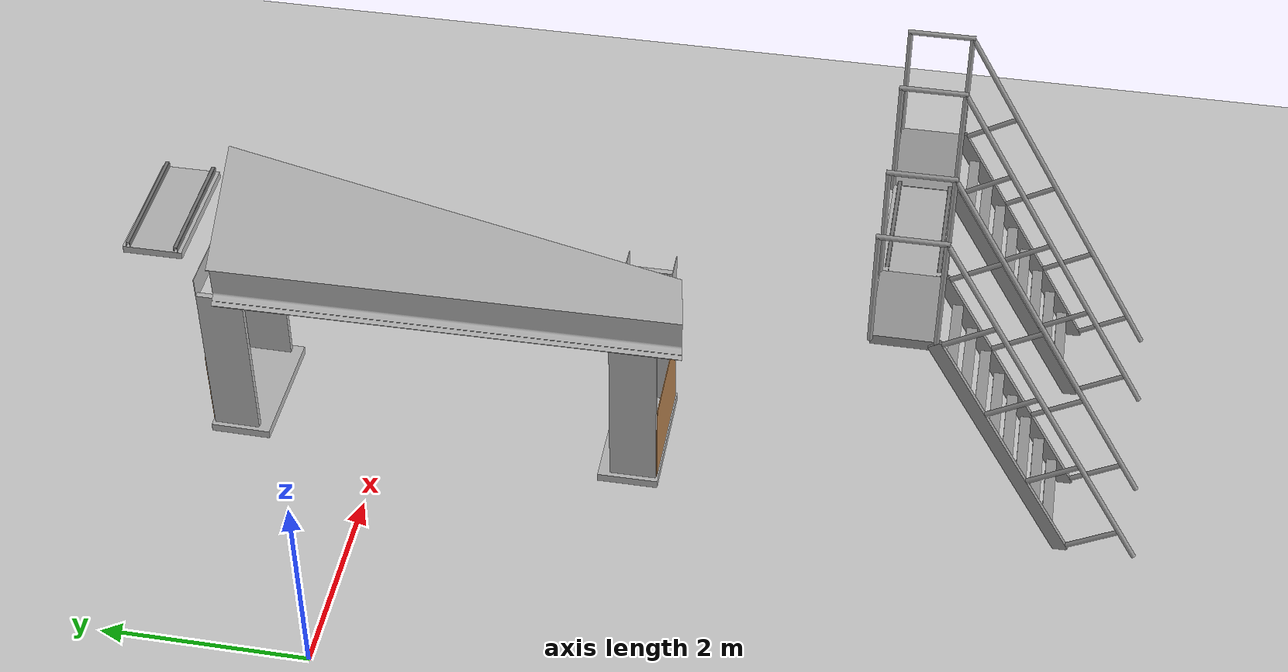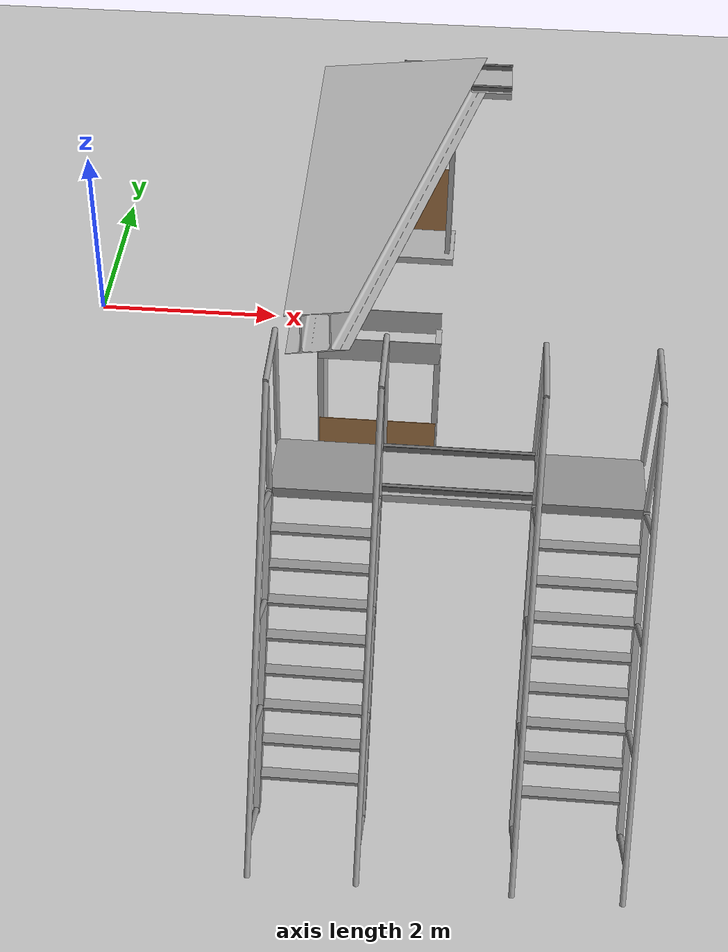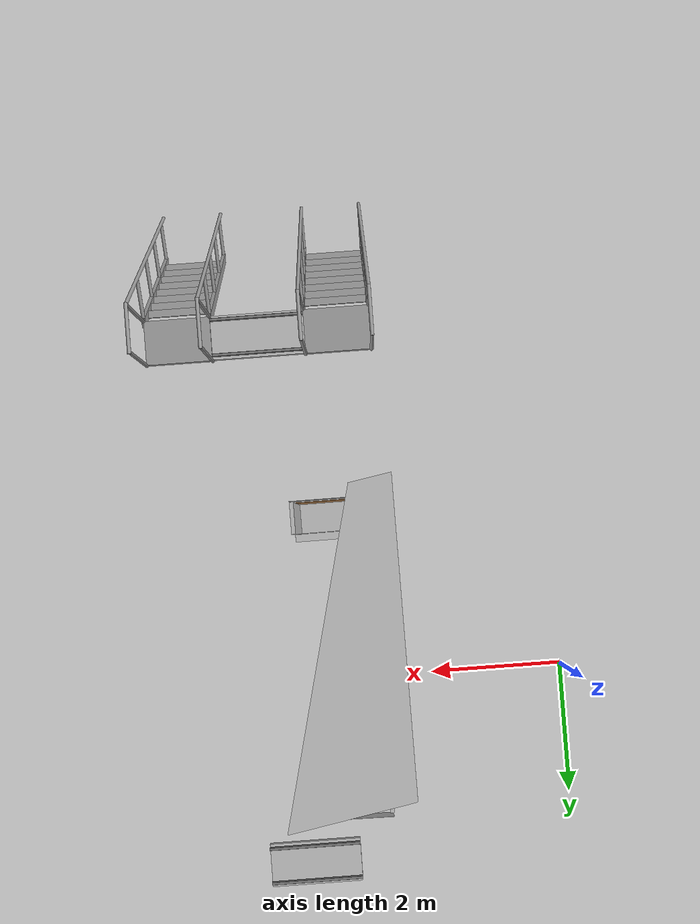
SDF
<sdf version="1.6">
 <world name="default">
  <model name="ground_plane">
   <static>1</static>
   <link name="link">
    <collision name="collision">
     <geometry><plane><normal>0 0 1</normal><size>100 100</size></plane></geometry>
     <surface>
      <contact><collide_bitmask>65535</collide_bitmask></contact>
      <friction><ode><mu>100</mu><mu2>50</mu2></ode></friction>
     </surface>
    </collision>
    <visual name="visual">
     <cast_shadows>0</cast_shadows>
     <geometry><plane><normal>0 0 1</normal><size>100 100</size></plane></geometry>
     <material>
      <script><uri>file://media/materials/scripts/gazebo.material</uri><name>Gazebo/Grey</name></script>
     </material>
    </visual>
   </link>
  </model>
  <model name="ladder_60deg_2rails">
   <static>1</static>
   <link name="step0">
    <pose>0 0.15396 0.266667 0 -0 0</pose>
    <inertial>
     <mass>9.75482</mass>
     <inertia>
      <ixx>0.00957124</ixx>
      <iyy>0.65963</iyy>
      <izz>0.666842</izz>
      <ixy>0</ixy>
      <ixz>0</ixz>
      <iyz>0</iyz>
     </inertia>
    </inertial>
    <collision name="collision"><geometry><box><size>0.9 0.1016 0.0381</size></box></geometry></collision>
    <visual name="visual">
     <geometry><box><size>0.9 0.1016 0.0381</size></box></geometry>
     <material>
      <script><uri>file://media/materials/scripts/gazebo.material</uri><name>Gazebo/Grey</name></script>
     </material>
    </visual>
   </link>
   <link name="step1">
    <pose>0 0.30792 0.533333 0 -0 0</pose>
    <inertial>
     <mass>9.75482</mass>
     <inertia>
      <ixx>0.00957124</ixx>
      <iyy>0.65963</iyy>
      <izz>0.666842</izz>
      <ixy>0</ixy>
      <ixz>0</ixz>
      <iyz>0</iyz>
     </inertia>
    </inertial>
    <collision name="collision"><geometry><box><size>0.9 0.1016 0.0381</size></box></geometry></collision>
    <visual name="visual">
     <geometry><box><size>0.9 0.1016 0.0381</size></box></geometry>
     <material>
      <script><uri>file://media/materials/scripts/gazebo.material</uri><name>Gazebo/Grey</name></script>
     </material>
    </visual>
   </link>
   <link name="step2">
    <pose>0 0.46188 0.8 0 -0 0</pose>
    <inertial>
     <mass>9.75482</mass>
     <inertia>
      <ixx>0.00957124</ixx>
      <iyy>0.65963</iyy>
      <izz>0.666842</izz>
      <ixy>0</ixy>
      <ixz>0</ixz>
      <iyz>0</iyz>
     </inertia>
    </inertial>
    <collision name="collision"><geometry><box><size>0.9 0.1016 0.0381</size></box></geometry></collision>
    <visual name="visual">
     <geometry><box><size>0.9 0.1016 0.0381</size></box></geometry>
     <material>
      <script><uri>file://media/materials/scripts/gazebo.material</uri><name>Gazebo/Grey</name></script>
     </material>
    </visual>
   </link>
   <link name="step3">
    <pose>0 0.61584 1.06667 0 -0 0</pose>
    <inertial>
     <mass>9.75482</mass>
     <inertia>
      <ixx>0.00957124</ixx>
      <iyy>0.65963</iyy>
      <izz>0.666842</izz>
      <ixy>0</ixy>
      <ixz>0</ixz>
      <iyz>0</iyz>
     </inertia>
    </inertial>
    <collision name="collision"><geometry><box><size>0.9 0.1016 0.0381</size></box></geometry></collision>
    <visual name="visual">
     <geometry><box><size>0.9 0.1016 0.0381</size></box></geometry>
     <material>
      <script><uri>file://media/materials/scripts/gazebo.material</uri><name>Gazebo/Grey</name></script>
     </material>
    </visual>
   </link>
   <link name="step4">
    <pose>0 0.7698 1.33333 0 -0 0</pose>
    <inertial>
     <mass>9.75482</mass>
     <inertia>
      <ixx>0.00957124</ixx>
      <iyy>0.65963</iyy>
      <izz>0.666842</izz>
      <ixy>0</ixy>
      <ixz>0</ixz>
      <iyz>0</iyz>
     </inertia>
    </inertial>
    <collision name="collision"><geometry><box><size>0.9 0.1016 0.0381</size></box></geometry></collision>
    <visual name="visual">
     <geometry><box><size>0.9 0.1016 0.0381</size></box></geometry>
     <material>
      <script><uri>file://media/materials/scripts/gazebo.material</uri><name>Gazebo/Grey</name></script>
     </material>
    </visual>
   </link>
   <link name="step5">
    <pose>0 0.92376 1.6 0 -0 0</pose>
    <inertial>
     <mass>9.75482</mass>
     <inertia>
      <ixx>0.00957124</ixx>
      <iyy>0.65963</iyy>
      <izz>0.666842</izz>
      <ixy>0</ixy>
      <ixz>0</ixz>
      <iyz>0</iyz>
     </inertia>
    </inertial>
    <collision name="collision"><geometry><box><size>0.9 0.1016 0.0381</size></box></geometry></collision>
    <visual name="visual">
     <geometry><box><size>0.9 0.1016 0.0381</size></box></geometry>
     <material>
      <script><uri>file://media/materials/scripts/gazebo.material</uri><name>Gazebo/Grey</name></script>
     </material>
    </visual>
   </link>
   <link name="step6">
    <pose>0 1.07772 1.86667 0 -0 0</pose>
    <inertial>
     <mass>9.75482</mass>
     <inertia>
      <ixx>0.00957124</ixx>
      <iyy>0.65963</iyy>
      <izz>0.666842</izz>
      <ixy>0</ixy>
      <ixz>0</ixz>
      <iyz>0</iyz>
     </inertia>
    </inertial>
    <collision name="collision"><geometry><box><size>0.9 0.1016 0.0381</size></box></geometry></collision>
    <visual name="visual">
     <geometry><box><size>0.9 0.1016 0.0381</size></box></geometry>
     <material>
      <script><uri>file://media/materials/scripts/gazebo.material</uri><name>Gazebo/Grey</name></script>
     </material>
    </visual>
   </link>
   <link name="step7">
    <pose>0 1.23168 2.13333 0 -0 0</pose>
    <inertial>
     <mass>9.75482</mass>
     <inertia>
      <ixx>0.00957124</ixx>
      <iyy>0.65963</iyy>
      <izz>0.666842</izz>
      <ixy>0</ixy>
      <ixz>0</ixz>
      <iyz>0</iyz>
     </inertia>
    </inertial>
    <collision name="collision"><geometry><box><size>0.9 0.1016 0.0381</size></box></geometry></collision>
    <visual name="visual">
     <geometry><box><size>0.9 0.1016 0.0381</size></box></geometry>
     <material>
      <script><uri>file://media/materials/scripts/gazebo.material</uri><name>Gazebo/Grey</name></script>
     </material>
    </visual>
   </link>
   <link name="landing">
    <pose>0 1.68564 2.4 0 -0 0</pose>
    <inertial>
     <mass>57.6072</mass>
     <inertia><ixx>1.73518</ixx><iyy>3.89545</iyy><izz>5.6167</izz><ixy>0</ixy><ixz>0</ixz><iyz>0</iyz></inertia>
    </inertial>
    <collision name="collision"><geometry><box><size>0.9 0.6 0.1016</size></box></geometry></collision>
    <visual name="visual">
     <geometry><box><size>0.9 0.6 0.1016</size></box></geometry>
     <material>
      <script><uri>file://media/materials/scripts/gazebo.material</uri><name>Gazebo/Grey</name></script>
     </material>
    </visual>
   </link>
   <link name="left_side_wall">
    <pose>-0.45 0.69282 1.2 1.0472 -0 0</pose>
    <collision name="collision"><geometry><box><size>0.0508 2.85128 0.13</size></box></geometry></collision>
    <visual name="visual">
     <geometry><box><size>0.0508 2.85128 0.13</size></box></geometry>
     <material>
      <script><uri>file://media/materials/scripts/gazebo.material</uri><name>Gazebo/Grey</name></script>
     </material>
    </visual>
   </link>
   <link name="right_side_wall">
    <pose>0.45 0.69282 1.2 1.0472 -0 0</pose>
    <collision name="collision"><geometry><box><size>0.0508 2.85128 0.13</size></box></geometry></collision>
    <visual name="visual">
     <geometry><box><size>0.0508 2.85128 0.13</size></box></geometry>
     <material>
      <script><uri>file://media/materials/scripts/gazebo.material</uri><name>Gazebo/Grey</name></script>
     </material>
    </visual>
   </link>
   <link name="left_railing_long">
    <pose>-0.45 0.34282 1.80622 -0.523599 0 0</pose>
    <collision name="collision">
     <geometry><cylinder><radius>0.02413</radius><length>4.17128</length></cylinder></geometry>
    </collision>
    <visual name="visual">
     <geometry><cylinder><radius>0.02413</radius><length>4.17128</length></cylinder></geometry>
     <material>
      <script><uri>file://media/materials/scripts/gazebo.material</uri><name>Gazebo/Grey</name></script>
     </material>
    </visual>
   </link>
   <link name="left_railing_upright0">
    <pose>-0.45 -0.274963 0.15875 1.0472 -0 0</pose>
    <collision name="collision">
     <geometry><cylinder><radius>0.02413</radius><length>0.541218</length></cylinder></geometry>
    </collision>
    <visual name="visual">
     <geometry><cylinder><radius>0.02413</radius><length>0.541218</length></cylinder></geometry>
     <material>
      <script><uri>file://media/materials/scripts/gazebo.material</uri><name>Gazebo/Grey</name></script>
     </material>
    </visual>
   </link>
   <link name="left_railing_upright1">
    <pose>-0.45 0.186917 0.95875 1.0472 -0 0</pose>
    <collision name="collision">
     <geometry><cylinder><radius>0.02413</radius><length>0.541218</length></cylinder></geometry>
    </collision>
    <visual name="visual">
     <geometry><cylinder><radius>0.02413</radius><length>0.541218</length></cylinder></geometry>
     <material>
      <script><uri>file://media/materials/scripts/gazebo.material</uri><name>Gazebo/Grey</name></script>
     </material>
    </visual>
   </link>
   <link name="left_railing_upright2">
    <pose>-0.45 0.648797 1.75875 1.0472 -0 0</pose>
    <collision name="collision">
     <geometry><cylinder><radius>0.02413</radius><length>0.541218</length></cylinder></geometry>
    </collision>
    <visual name="visual">
     <geometry><cylinder><radius>0.02413</radius><length>0.541218</length></cylinder></geometry>
     <material>
      <script><uri>file://media/materials/scripts/gazebo.material</uri><name>Gazebo/Grey</name></script>
     </material>
    </visual>
   </link>
   <link name="left_railing_upright3">
    <pose>-0.45 1.11068 2.55875 1.0472 -0 0</pose>
    <collision name="collision">
     <geometry><cylinder><radius>0.02413</radius><length>0.541218</length></cylinder></geometry>
    </collision>
    <visual name="visual">
     <geometry><cylinder><radius>0.02413</radius><length>0.541218</length></cylinder></geometry>
     <material>
      <script><uri>file://media/materials/scripts/gazebo.material</uri><name>Gazebo/Grey</name></script>
     </material>
    </visual>
   </link>
   <link name="left_railing_landing_top">
    <pose>-0.45 1.68564 3.61244 1.5708 -0 0</pose>
    <collision name="collision">
     <geometry><cylinder><radius>0.02413</radius><length>0.64826</length></cylinder></geometry>
    </collision>
    <visual name="visual">
     <geometry><cylinder><radius>0.02413</radius><length>0.64826</length></cylinder></geometry>
     <material>
      <script><uri>file://media/materials/scripts/gazebo.material</uri><name>Gazebo/Grey</name></script>
     </material>
    </visual>
   </link>
   <link name="left_railing_landing_upright_0">
    <pose>-0.45 1.38564 3.00622 0 -0 0</pose>
    <collision name="collision">
     <geometry><cylinder><radius>0.02413</radius><length>1.21244</length></cylinder></geometry>
    </collision>
    <visual name="visual">
     <geometry><cylinder><radius>0.02413</radius><length>1.21244</length></cylinder></geometry>
     <material>
      <script><uri>file://media/materials/scripts/gazebo.material</uri><name>Gazebo/Grey</name></script>
     </material>
    </visual>
   </link>
   <link name="left_railing_landing_upright_1">
    <pose>-0.45 1.98564 3.00622 0 -0 0</pose>
    <collision name="collision">
     <geometry><cylinder><radius>0.02413</radius><length>1.21244</length></cylinder></geometry>
    </collision>
    <visual name="visual">
     <geometry><cylinder><radius>0.02413</radius><length>1.21244</length></cylinder></geometry>
     <material>
      <script><uri>file://media/materials/scripts/gazebo.material</uri><name>Gazebo/Grey</name></script>
     </material>
    </visual>
   </link>
   <link name="right_railing_long">
    <pose>0.45 0.34282 1.80622 -0.523599 0 0</pose>
    <collision name="collision">
     <geometry><cylinder><radius>0.02413</radius><length>4.17128</length></cylinder></geometry>
    </collision>
    <visual name="visual">
     <geometry><cylinder><radius>0.02413</radius><length>4.17128</length></cylinder></geometry>
     <material>
      <script><uri>file://media/materials/scripts/gazebo.material</uri><name>Gazebo/Grey</name></script>
     </material>
    </visual>
   </link>
   <link name="right_railing_upright0">
    <pose>0.45 -0.274963 0.15875 1.0472 -0 0</pose>
    <collision name="collision">
     <geometry><cylinder><radius>0.02413</radius><length>0.541218</length></cylinder></geometry>
    </collision>
    <visual name="visual">
     <geometry><cylinder><radius>0.02413</radius><length>0.541218</length></cylinder></geometry>
     <material>
      <script><uri>file://media/materials/scripts/gazebo.material</uri><name>Gazebo/Grey</name></script>
     </material>
    </visual>
   </link>
   <link name="right_railing_upright1">
    <pose>0.45 0.186917 0.95875 1.0472 -0 0</pose>
    <collision name="collision">
     <geometry><cylinder><radius>0.02413</radius><length>0.541218</length></cylinder></geometry>
    </collision>
    <visual name="visual">
     <geometry><cylinder><radius>0.02413</radius><length>0.541218</length></cylinder></geometry>
     <material>
      <script><uri>file://media/materials/scripts/gazebo.material</uri><name>Gazebo/Grey</name></script>
     </material>
    </visual>
   </link>
   <link name="right_railing_upright2">
    <pose>0.45 0.648797 1.75875 1.0472 -0 0</pose>
    <collision name="collision">
     <geometry><cylinder><radius>0.02413</radius><length>0.541218</length></cylinder></geometry>
    </collision>
    <visual name="visual">
     <geometry><cylinder><radius>0.02413</radius><length>0.541218</length></cylinder></geometry>
     <material>
      <script><uri>file://media/materials/scripts/gazebo.material</uri><name>Gazebo/Grey</name></script>
     </material>
    </visual>
   </link>
   <link name="right_railing_upright3">
    <pose>0.45 1.11068 2.55875 1.0472 -0 0</pose>
    <collision name="collision">
     <geometry><cylinder><radius>0.02413</radius><length>0.541218</length></cylinder></geometry>
    </collision>
    <visual name="visual">
     <geometry><cylinder><radius>0.02413</radius><length>0.541218</length></cylinder></geometry>
     <material>
      <script><uri>file://media/materials/scripts/gazebo.material</uri><name>Gazebo/Grey</name></script>
     </material>
    </visual>
   </link>
   <link name="right_railing_landing_top">
    <pose>0.45 1.68564 3.61244 1.5708 -0 0</pose>
    <collision name="collision">
     <geometry><cylinder><radius>0.02413</radius><length>0.64826</length></cylinder></geometry>
    </collision>
    <visual name="visual">
     <geometry><cylinder><radius>0.02413</radius><length>0.64826</length></cylinder></geometry>
     <material>
      <script><uri>file://media/materials/scripts/gazebo.material</uri><name>Gazebo/Grey</name></script>
     </material>
    </visual>
   </link>
   <link name="right_railing_landing_upright_0">
    <pose>0.45 1.38564 3.00622 0 -0 0</pose>
    <collision name="collision">
     <geometry><cylinder><radius>0.02413</radius><length>1.21244</length></cylinder></geometry>
    </collision>
    <visual name="visual">
     <geometry><cylinder><radius>0.02413</radius><length>1.21244</length></cylinder></geometry>
     <material>
      <script><uri>file://media/materials/scripts/gazebo.material</uri><name>Gazebo/Grey</name></script>
     </material>
    </visual>
   </link>
   <link name="right_railing_landing_upright_1">
    <pose>0.45 1.98564 3.00622 0 -0 0</pose>
    <collision name="collision">
     <geometry><cylinder><radius>0.02413</radius><length>1.21244</length></cylinder></geometry>
    </collision>
    <visual name="visual">
     <geometry><cylinder><radius>0.02413</radius><length>1.21244</length></cylinder></geometry>
     <material>
      <script><uri>file://media/materials/scripts/gazebo.material</uri><name>Gazebo/Grey</name></script>
     </material>
    </visual>
   </link>
   <pose>5.22759 -6.71904 0 0 -0 0</pose>
  </model>
  <model name="ladder_60deg_2rails_clone_clone_clone">
   <static>1</static>
   <link name="step0">
    <pose>0 0.15396 0.266667 0 -0 0</pose>
    <inertial>
     <mass>9.75482</mass>
     <inertia>
      <ixx>0.00957124</ixx>
      <iyy>0.65963</iyy>
      <izz>0.666842</izz>
      <ixy>0</ixy>
      <ixz>0</ixz>
      <iyz>0</iyz>
     </inertia>
    </inertial>
    <collision name="collision"><geometry><box><size>0.9 0.1016 0.0381</size></box></geometry></collision>
    <visual name="visual">
     <geometry><box><size>0.9 0.1016 0.0381</size></box></geometry>
     <material>
      <script><uri>file://media/materials/scripts/gazebo.material</uri><name>Gazebo/Grey</name></script>
     </material>
    </visual>
   </link>
   <link name="step1">
    <pose>0 0.30792 0.533333 0 -0 0</pose>
    <inertial>
     <mass>9.75482</mass>
     <inertia>
      <ixx>0.00957124</ixx>
      <iyy>0.65963</iyy>
      <izz>0.666842</izz>
      <ixy>0</ixy>
      <ixz>0</ixz>
      <iyz>0</iyz>
     </inertia>
    </inertial>
    <collision name="collision"><geometry><box><size>0.9 0.1016 0.0381</size></box></geometry></collision>
    <visual name="visual">
     <geometry><box><size>0.9 0.1016 0.0381</size></box></geometry>
     <material>
      <script><uri>file://media/materials/scripts/gazebo.material</uri><name>Gazebo/Grey</name></script>
     </material>
    </visual>
   </link>
   <link name="step2">
    <pose>0 0.46188 0.8 0 -0 0</pose>
    <inertial>
     <mass>9.75482</mass>
     <inertia>
      <ixx>0.00957124</ixx>
      <iyy>0.65963</iyy>
      <izz>0.666842</izz>
      <ixy>0</ixy>
      <ixz>0</ixz>
      <iyz>0</iyz>
     </inertia>
    </inertial>
    <collision name="collision"><geometry><box><size>0.9 0.1016 0.0381</size></box></geometry></collision>
    <visual name="visual">
     <geometry><box><size>0.9 0.1016 0.0381</size></box></geometry>
     <material>
      <script><uri>file://media/materials/scripts/gazebo.material</uri><name>Gazebo/Grey</name></script>
     </material>
    </visual>
   </link>
   <link name="step3">
    <pose>0 0.61584 1.06667 0 -0 0</pose>
    <inertial>
     <mass>9.75482</mass>
     <inertia>
      <ixx>0.00957124</ixx>
      <iyy>0.65963</iyy>
      <izz>0.666842</izz>
      <ixy>0</ixy>
      <ixz>0</ixz>
      <iyz>0</iyz>
     </inertia>
    </inertial>
    <collision name="collision"><geometry><box><size>0.9 0.1016 0.0381</size></box></geometry></collision>
    <visual name="visual">
     <geometry><box><size>0.9 0.1016 0.0381</size></box></geometry>
     <material>
      <script><uri>file://media/materials/scripts/gazebo.material</uri><name>Gazebo/Grey</name></script>
     </material>
    </visual>
   </link>
   <link name="step4">
    <pose>0 0.7698 1.33333 0 -0 0</pose>
    <inertial>
     <mass>9.75482</mass>
     <inertia>
      <ixx>0.00957124</ixx>
      <iyy>0.65963</iyy>
      <izz>0.666842</izz>
      <ixy>0</ixy>
      <ixz>0</ixz>
      <iyz>0</iyz>
     </inertia>
    </inertial>
    <collision name="collision"><geometry><box><size>0.9 0.1016 0.0381</size></box></geometry></collision>
    <visual name="visual">
     <geometry><box><size>0.9 0.1016 0.0381</size></box></geometry>
     <material>
      <script><uri>file://media/materials/scripts/gazebo.material</uri><name>Gazebo/Grey</name></script>
     </material>
    </visual>
   </link>
   <link name="step5">
    <pose>0 0.92376 1.6 0 -0 0</pose>
    <inertial>
     <mass>9.75482</mass>
     <inertia>
      <ixx>0.00957124</ixx>
      <iyy>0.65963</iyy>
      <izz>0.666842</izz>
      <ixy>0</ixy>
      <ixz>0</ixz>
      <iyz>0</iyz>
     </inertia>
    </inertial>
    <collision name="collision"><geometry><box><size>0.9 0.1016 0.0381</size></box></geometry></collision>
    <visual name="visual">
     <geometry><box><size>0.9 0.1016 0.0381</size></box></geometry>
     <material>
      <script><uri>file://media/materials/scripts/gazebo.material</uri><name>Gazebo/Grey</name></script>
     </material>
    </visual>
   </link>
   <link name="step6">
    <pose>0 1.07772 1.86667 0 -0 0</pose>
    <inertial>
     <mass>9.75482</mass>
     <inertia>
      <ixx>0.00957124</ixx>
      <iyy>0.65963</iyy>
      <izz>0.666842</izz>
      <ixy>0</ixy>
      <ixz>0</ixz>
      <iyz>0</iyz>
     </inertia>
    </inertial>
    <collision name="collision"><geometry><box><size>0.9 0.1016 0.0381</size></box></geometry></collision>
    <visual name="visual">
     <geometry><box><size>0.9 0.1016 0.0381</size></box></geometry>
     <material>
      <script><uri>file://media/materials/scripts/gazebo.material</uri><name>Gazebo/Grey</name></script>
     </material>
    </visual>
   </link>
   <link name="step7">
    <pose>0 1.23168 2.13333 0 -0 0</pose>
    <inertial>
     <mass>9.75482</mass>
     <inertia>
      <ixx>0.00957124</ixx>
      <iyy>0.65963</iyy>
      <izz>0.666842</izz>
      <ixy>0</ixy>
      <ixz>0</ixz>
      <iyz>0</iyz>
     </inertia>
    </inertial>
    <collision name="collision"><geometry><box><size>0.9 0.1016 0.0381</size></box></geometry></collision>
    <visual name="visual">
     <geometry><box><size>0.9 0.1016 0.0381</size></box></geometry>
     <material>
      <script><uri>file://media/materials/scripts/gazebo.material</uri><name>Gazebo/Grey</name></script>
     </material>
    </visual>
   </link>
   <link name="landing">
    <pose>0 1.68564 2.4 0 -0 0</pose>
    <inertial>
     <mass>57.6072</mass>
     <inertia><ixx>1.73518</ixx><iyy>3.89545</iyy><izz>5.6167</izz><ixy>0</ixy><ixz>0</ixz><iyz>0</iyz></inertia>
    </inertial>
    <collision name="collision"><geometry><box><size>0.9 0.6 0.1016</size></box></geometry></collision>
    <visual name="visual">
     <geometry><box><size>0.9 0.6 0.1016</size></box></geometry>
     <material>
      <script><uri>file://media/materials/scripts/gazebo.material</uri><name>Gazebo/Grey</name></script>
     </material>
    </visual>
   </link>
   <link name="left_side_wall">
    <pose>-0.45 0.69282 1.2 1.0472 -0 0</pose>
    <collision name="collision"><geometry><box><size>0.0508 2.85128 0.13</size></box></geometry></collision>
    <visual name="visual">
     <geometry><box><size>0.0508 2.85128 0.13</size></box></geometry>
     <material>
      <script><uri>file://media/materials/scripts/gazebo.material</uri><name>Gazebo/Grey</name></script>
     </material>
    </visual>
   </link>
   <link name="right_side_wall">
    <pose>0.45 0.69282 1.2 1.0472 -0 0</pose>
    <collision name="collision"><geometry><box><size>0.0508 2.85128 0.13</size></box></geometry></collision>
    <visual name="visual">
     <geometry><box><size>0.0508 2.85128 0.13</size></box></geometry>
     <material>
      <script><uri>file://media/materials/scripts/gazebo.material</uri><name>Gazebo/Grey</name></script>
     </material>
    </visual>
   </link>
   <link name="left_railing_long">
    <pose>-0.45 0.34282 1.80622 -0.523599 0 0</pose>
    <collision name="collision">
     <geometry><cylinder><radius>0.02413</radius><length>4.17128</length></cylinder></geometry>
    </collision>
    <visual name="visual">
     <geometry><cylinder><radius>0.02413</radius><length>4.17128</length></cylinder></geometry>
     <material>
      <script><uri>file://media/materials/scripts/gazebo.material</uri><name>Gazebo/Grey</name></script>
     </material>
    </visual>
   </link>
   <link name="left_railing_upright0">
    <pose>-0.45 -0.274963 0.15875 1.0472 -0 0</pose>
    <collision name="collision">
     <geometry><cylinder><radius>0.02413</radius><length>0.541218</length></cylinder></geometry>
    </collision>
    <visual name="visual">
     <geometry><cylinder><radius>0.02413</radius><length>0.541218</length></cylinder></geometry>
     <material>
      <script><uri>file://media/materials/scripts/gazebo.material</uri><name>Gazebo/Grey</name></script>
     </material>
    </visual>
   </link>
   <link name="left_railing_upright1">
    <pose>-0.45 0.186917 0.95875 1.0472 -0 0</pose>
    <collision name="collision">
     <geometry><cylinder><radius>0.02413</radius><length>0.541218</length></cylinder></geometry>
    </collision>
    <visual name="visual">
     <geometry><cylinder><radius>0.02413</radius><length>0.541218</length></cylinder></geometry>
     <material>
      <script><uri>file://media/materials/scripts/gazebo.material</uri><name>Gazebo/Grey</name></script>
     </material>
    </visual>
   </link>
   <link name="left_railing_upright2">
    <pose>-0.45 0.648797 1.75875 1.0472 -0 0</pose>
    <collision name="collision">
     <geometry><cylinder><radius>0.02413</radius><length>0.541218</length></cylinder></geometry>
    </collision>
    <visual name="visual">
     <geometry><cylinder><radius>0.02413</radius><length>0.541218</length></cylinder></geometry>
     <material>
      <script><uri>file://media/materials/scripts/gazebo.material</uri><name>Gazebo/Grey</name></script>
     </material>
    </visual>
   </link>
   <link name="left_railing_upright3">
    <pose>-0.45 1.11068 2.55875 1.0472 -0 0</pose>
    <collision name="collision">
     <geometry><cylinder><radius>0.02413</radius><length>0.541218</length></cylinder></geometry>
    </collision>
    <visual name="visual">
     <geometry><cylinder><radius>0.02413</radius><length>0.541218</length></cylinder></geometry>
     <material>
      <script><uri>file://media/materials/scripts/gazebo.material</uri><name>Gazebo/Grey</name></script>
     </material>
    </visual>
   </link>
   <link name="left_railing_landing_top">
    <pose>-0.45 1.68564 3.61244 1.5708 -0 0</pose>
    <collision name="collision">
     <geometry><cylinder><radius>0.02413</radius><length>0.64826</length></cylinder></geometry>
    </collision>
    <visual name="visual">
     <geometry><cylinder><radius>0.02413</radius><length>0.64826</length></cylinder></geometry>
     <material>
      <script><uri>file://media/materials/scripts/gazebo.material</uri><name>Gazebo/Grey</name></script>
     </material>
    </visual>
   </link>
   <link name="left_railing_landing_upright_0">
    <pose>-0.45 1.38564 3.00622 0 -0 0</pose>
    <collision name="collision">
     <geometry><cylinder><radius>0.02413</radius><length>1.21244</length></cylinder></geometry>
    </collision>
    <visual name="visual">
     <geometry><cylinder><radius>0.02413</radius><length>1.21244</length></cylinder></geometry>
     <material>
      <script><uri>file://media/materials/scripts/gazebo.material</uri><name>Gazebo/Grey</name></script>
     </material>
    </visual>
   </link>
   <link name="left_railing_landing_upright_1">
    <pose>-0.45 1.98564 3.00622 0 -0 0</pose>
    <collision name="collision">
     <geometry><cylinder><radius>0.02413</radius><length>1.21244</length></cylinder></geometry>
    </collision>
    <visual name="visual">
     <geometry><cylinder><radius>0.02413</radius><length>1.21244</length></cylinder></geometry>
     <material>
      <script><uri>file://media/materials/scripts/gazebo.material</uri><name>Gazebo/Grey</name></script>
     </material>
    </visual>
   </link>
   <link name="right_railing_long">
    <pose>0.45 0.34282 1.80622 -0.523599 0 0</pose>
    <collision name="collision">
     <geometry><cylinder><radius>0.02413</radius><length>4.17128</length></cylinder></geometry>
    </collision>
    <visual name="visual">
     <geometry><cylinder><radius>0.02413</radius><length>4.17128</length></cylinder></geometry>
     <material>
      <script><uri>file://media/materials/scripts/gazebo.material</uri><name>Gazebo/Grey</name></script>
     </material>
    </visual>
   </link>
   <link name="right_railing_upright0">
    <pose>0.45 -0.274963 0.15875 1.0472 -0 0</pose>
    <collision name="collision">
     <geometry><cylinder><radius>0.02413</radius><length>0.541218</length></cylinder></geometry>
    </collision>
    <visual name="visual">
     <geometry><cylinder><radius>0.02413</radius><length>0.541218</length></cylinder></geometry>
     <material>
      <script><uri>file://media/materials/scripts/gazebo.material</uri><name>Gazebo/Grey</name></script>
     </material>
    </visual>
   </link>
   <link name="right_railing_upright1">
    <pose>0.45 0.186917 0.95875 1.0472 -0 0</pose>
    <collision name="collision">
     <geometry><cylinder><radius>0.02413</radius><length>0.541218</length></cylinder></geometry>
    </collision>
    <visual name="visual">
     <geometry><cylinder><radius>0.02413</radius><length>0.541218</length></cylinder></geometry>
     <material>
      <script><uri>file://media/materials/scripts/gazebo.material</uri><name>Gazebo/Grey</name></script>
     </material>
    </visual>
   </link>
   <link name="right_railing_upright2">
    <pose>0.45 0.648797 1.75875 1.0472 -0 0</pose>
    <collision name="collision">
     <geometry><cylinder><radius>0.02413</radius><length>0.541218</length></cylinder></geometry>
    </collision>
    <visual name="visual">
     <geometry><cylinder><radius>0.02413</radius><length>0.541218</length></cylinder></geometry>
     <material>
      <script><uri>file://media/materials/scripts/gazebo.material</uri><name>Gazebo/Grey</name></script>
     </material>
    </visual>
   </link>
   <link name="right_railing_upright3">
    <pose>0.45 1.11068 2.55875 1.0472 -0 0</pose>
    <collision name="collision">
     <geometry><cylinder><radius>0.02413</radius><length>0.541218</length></cylinder></geometry>
    </collision>
    <visual name="visual">
     <geometry><cylinder><radius>0.02413</radius><length>0.541218</length></cylinder></geometry>
     <material>
      <script><uri>file://media/materials/scripts/gazebo.material</uri><name>Gazebo/Grey</name></script>
     </material>
    </visual>
   </link>
   <link name="right_railing_landing_top">
    <pose>0.45 1.68564 3.61244 1.5708 -0 0</pose>
    <collision name="collision">
     <geometry><cylinder><radius>0.02413</radius><length>0.64826</length></cylinder></geometry>
    </collision>
    <visual name="visual">
     <geometry><cylinder><radius>0.02413</radius><length>0.64826</length></cylinder></geometry>
     <material>
      <script><uri>file://media/materials/scripts/gazebo.material</uri><name>Gazebo/Grey</name></script>
     </material>
    </visual>
   </link>
   <link name="right_railing_landing_upright_0">
    <pose>0.45 1.38564 3.00622 0 -0 0</pose>
    <collision name="collision">
     <geometry><cylinder><radius>0.02413</radius><length>1.21244</length></cylinder></geometry>
    </collision>
    <visual name="visual">
     <geometry><cylinder><radius>0.02413</radius><length>1.21244</length></cylinder></geometry>
     <material>
      <script><uri>file://media/materials/scripts/gazebo.material</uri><name>Gazebo/Grey</name></script>
     </material>
    </visual>
   </link>
   <link name="right_railing_landing_upright_1">
    <pose>0.45 1.98564 3.00622 0 -0 0</pose>
    <collision name="collision">
     <geometry><cylinder><radius>0.02413</radius><length>1.21244</length></cylinder></geometry>
    </collision>
    <visual name="visual">
     <geometry><cylinder><radius>0.02413</radius><length>1.21244</length></cylinder></geometry>
     <material>
      <script><uri>file://media/materials/scripts/gazebo.material</uri><name>Gazebo/Grey</name></script>
     </material>
    </visual>
   </link>
   <pose>3.05529 -6.72322 0 0 0 -0.00053</pose>
  </model>
  <model name="box">
   <pose>2.43729 1.4544 2.42142 0.014528 -0.000395 -1.56431</pose>
   <static>1</static>
   <link name="body">
    <visual name="visual"><geometry><mesh><scale>3 3 3</scale><uri>file://box.stl</uri></mesh></geometry></visual>
   </link>
  </model>
  <model name="nut">
   <pose>2.91683 -1.08568 1.97378 0 -0 0</pose>
   <static>1</static>
   <link name="body">
    <visual name="visual"><geometry><mesh><uri>file://nut.stl</uri></mesh></geometry></visual>
   </link>
  </model>
  <model name="screw">
   <pose>3.20222 -0.95916 1.99097 0 -0 0</pose>
   <static>1</static>
   <link name="body">
    <visual name="visual"><geometry><mesh><uri>file://screw.stl</uri></mesh></geometry></visual>
   </link>
  </model>
  <model name="screwdriver">
   <pose>3.01609 0.893565 2.05231 0 -0 0</pose>
   <static>1</static>
   <link name="body">
    <visual name="visual"><geometry><mesh><uri>file://screwdriver.stl</uri></mesh></geometry></visual>
   </link>
  </model>
  <model name="frc2016_drawbridge">
   <link name="base">
    <inertial>
     <mass>10</mass>
     <pose>0 0 1 0 -0 0</pose>
     <inertia><ixx>3.64907</ixx><ixy>0</ixy><ixz>0</ixz><iyy>4.67075</iyy><iyz>0</iyz><izz>1.66649</izz></inertia>
    </inertial>
    <visual name="platform">
     <pose>0 0 0.0425 0 -0 0</pose>
     <geometry><box><size>1.27 0.5969 0.085</size></box></geometry>
    </visual>
    <collision name="platform">
     <pose>0 0 0.0425 0 -0 0</pose>
     <geometry><box><size>1.27 0.5969 0.085</size></box></geometry>
    </collision>
    <visual name="right_wall">
     <pose>0.55879 0.04444 0.889 0 -0 0</pose>
     <geometry><box><size>0.05715 0.45698 1.77165</size></box></geometry>
    </visual>
    <collision name="right_wall">
     <pose>0.55879 0.04444 0.889 0 -0 0</pose>
     <geometry><box><size>0.05715 0.45698 1.77165</size></box></geometry>
    </collision>
    <visual name="left_wall">
     <pose>-0.55879 0.04444 0.889 0 -0 0</pose>
     <geometry><box><size>0.05715 0.45698 1.77165</size></box></geometry>
    </visual>
    <collision name="left_wall">
     <pose>-0.55879 0.04444 0.889 0 -0 0</pose>
     <geometry><box><size>0.05715 0.45698 1.77165</size></box></geometry>
    </collision>
    <visual name="front_upper_wall">
     <pose>0 0.27611 1.84286 0 -0 0</pose>
     <geometry><box><size>1.1557 0.006347 0.254</size></box></geometry>
    </visual>
    <collision name="front_upper_wall">
     <pose>0 0.27611 1.84286 0 -0 0</pose>
     <geometry><box><size>1.1557 0.006347 0.254</size></box></geometry>
    </collision>
    <visual name="back_upper_wall">
     <pose>0 -0.18722 1.84286 0 -0 0</pose>
     <geometry><box><size>1.1557 0.006347 0.254</size></box></geometry>
    </visual>
    <collision name="back_upper_wall">
     <pose>0 -0.18722 1.84286 0 -0 0</pose>
     <geometry><box><size>1.1557 0.006347 0.254</size></box></geometry>
    </collision>
   </link>
   <link name="bridge">
    <pose>0 0.28245 0.50577 0 -0 0</pose>
    <inertial>
     <mass>2</mass>
     <pose>0 -0.28245 -0.50577 0 -0 0</pose>
     <inertia>
      <ixx>0.139361</ixx>
      <ixy>0</ixy>
      <ixz>0</ixz>
      <iyy>0.357088</iyy>
      <iyz>0</iyz>
      <izz>0.217741</izz>
     </inertia>
    </inertial>
    <visual name="visual">
     <geometry><box><size>1.14298 0.006347 0.9144</size></box></geometry>
     <material><script><name>Gazebo/WoodFloor</name><uri>__default__</uri></script></material>
    </visual>
    <collision name="collision"><geometry><box><size>1.14298 0.006347 0.9144</size></box></geometry></collision>
   </link>
   <joint name="bridge_joint" type="revolute">
    <pose>0 0 -0.4172 0 -0 0</pose>
    <parent>base</parent>
    <child>bridge</child>
    <axis>
     <xyz>1 0 0</xyz>
     <limit><lower>-2</lower><upper>0</upper></limit>
     <use_parent_model_frame>0</use_parent_model_frame>
     <dynamics><spring_reference>0</spring_reference><spring_stiffness>0</spring_stiffness></dynamics>
    </axis>
   </joint>
   <pose>3.34539 1.45057 -3e-06 2e-06 4e-06 -0.012512</pose>
  </model>
  <model name="frc2016_moat">
   <static>1</static>
   <link name="link">
    <inertial>
     <mass>10</mass>
     <pose>0 0 0.06738 0 -0 0</pose>
     <inertia><ixx>0.312195</ixx><ixy>0</ixy><ixz>0</ixz><iyy>1.35927</iyy><iyz>0</iyz><izz>1.64109</izz></inertia>
    </inertial>
    <visual name="platform">
     <pose>0 0 0.0381 0 -0 0</pose>
     <geometry><box><size>1.27 0.5969 0.0762</size></box></geometry>
    </visual>
    <collision name="platform">
     <pose>0 0 0.0381 0 -0 0</pose>
     <geometry><box><size>1.27 0.5969 0.0762</size></box></geometry>
    </collision>
    <visual name="tube1_side1">
     <pose>0 -0.25876 0.10301 0 -0 0</pose>
     <geometry><box><size>1.27 0.003175 0.0635</size></box></geometry>
     <material><ambient>0.46 0.46 0.46 1</ambient><diffuse>0.46 0.46 0.46 1</diffuse></material>
    </visual>
    <collision name="tube1_side1">
     <pose>0 -0.25876 0.10301 0 -0 0</pose>
     <geometry><box><size>1.27 0.003175 0.0635</size></box></geometry>
    </collision>
    <visual name="tube1_side2">
     <pose>0 -0.22384 0.10301 0 -0 0</pose>
     <geometry><box><size>1.27 0.003175 0.0635</size></box></geometry>
     <material><ambient>0.46 0.46 0.46 1</ambient><diffuse>0.46 0.46 0.46 1</diffuse></material>
    </visual>
    <collision name="tube1_side2">
     <pose>0 -0.22384 0.10301 0 -0 0</pose>
     <geometry><box><size>1.27 0.003175 0.0635</size></box></geometry>
    </collision>
    <visual name="tube1_top">
     <pose>0 -0.2413 0.13317 0 -0 0</pose>
     <geometry><box><size>1.27 0.0381 0.003175</size></box></geometry>
     <material><ambient>0.46 0.46 0.46 1</ambient><diffuse>0.46 0.46 0.46 1</diffuse></material>
    </visual>
    <collision name="tube1_top">
     <pose>0 -0.2413 0.13317 0 -0 0</pose>
     <geometry><box><size>1.27 0.0381 0.003175</size></box></geometry>
    </collision>
    <visual name="tube2_side1">
     <pose>0 0.22384 0.10301 0 -0 0</pose>
     <geometry><box><size>1.27 0.003175 0.0635</size></box></geometry>
     <material><ambient>0.46 0.46 0.46 1</ambient><diffuse>0.46 0.46 0.46 1</diffuse></material>
    </visual>
    <collision name="tube2_side1">
     <pose>0 0.22384 0.10301 0 -0 0</pose>
     <geometry><box><size>1.27 0.003175 0.0635</size></box></geometry>
    </collision>
    <visual name="tube2_side2">
     <pose>0 0.25876 0.10301 0 -0 0</pose>
     <geometry><box><size>1.27 0.003175 0.0635</size></box></geometry>
     <material><ambient>0.46 0.46 0.46 1</ambient><diffuse>0.46 0.46 0.46 1</diffuse></material>
    </visual>
    <collision name="tube2_side2">
     <pose>0 0.25876 0.10301 0 -0 0</pose>
     <geometry><box><size>1.27 0.003175 0.0635</size></box></geometry>
    </collision>
    <visual name="tube2_top">
     <pose>0 0.2413 0.13317 0 -0 0</pose>
     <geometry><box><size>1.27 0.0381 0.003175</size></box></geometry>
     <material><ambient>0.46 0.46 0.46 1</ambient><diffuse>0.46 0.46 0.46 1</diffuse></material>
    </visual>
    <collision name="tube2_top">
     <pose>0 0.2413 0.13317 0 -0 0</pose>
     <geometry><box><size>1.27 0.0381 0.003175</size></box></geometry>
    </collision>
   </link>
   <pose>4.13952 -5.03912 2.37161 0 -0 0</pose>
  </model>
  <model name="frc2016_drawbridge_clone">
   <link name="base">
    <inertial>
     <mass>10</mass>
     <pose>0 0 1 0 -0 0</pose>
     <inertia><ixx>3.64907</ixx><ixy>0</ixy><ixz>0</ixz><iyy>4.67075</iyy><iyz>0</iyz><izz>1.66649</izz></inertia>
    </inertial>
    <visual name="platform">
     <pose>0 0 0.0425 0 -0 0</pose>
     <geometry><box><size>1.27 0.5969 0.085</size></box></geometry>
    </visual>
    <collision name="platform">
     <pose>0 0 0.0425 0 -0 0</pose>
     <geometry><box><size>1.27 0.5969 0.085</size></box></geometry>
    </collision>
    <visual name="right_wall">
     <pose>0.55879 0.04444 0.889 0 -0 0</pose>
     <geometry><box><size>0.05715 0.45698 1.77165</size></box></geometry>
    </visual>
    <collision name="right_wall">
     <pose>0.55879 0.04444 0.889 0 -0 0</pose>
     <geometry><box><size>0.05715 0.45698 1.77165</size></box></geometry>
    </collision>
    <visual name="left_wall">
     <pose>-0.55879 0.04444 0.889 0 -0 0</pose>
     <geometry><box><size>0.05715 0.45698 1.77165</size></box></geometry>
    </visual>
    <collision name="left_wall">
     <pose>-0.55879 0.04444 0.889 0 -0 0</pose>
     <geometry><box><size>0.05715 0.45698 1.77165</size></box></geometry>
    </collision>
    <visual name="front_upper_wall">
     <pose>0 0.27611 1.84286 0 -0 0</pose>
     <geometry><box><size>1.1557 0.006347 0.254</size></box></geometry>
    </visual>
    <collision name="front_upper_wall">
     <pose>0 0.27611 1.84286 0 -0 0</pose>
     <geometry><box><size>1.1557 0.006347 0.254</size></box></geometry>
    </collision>
    <visual name="back_upper_wall">
     <pose>0 -0.18722 1.84286 0 -0 0</pose>
     <geometry><box><size>1.1557 0.006347 0.254</size></box></geometry>
    </visual>
    <collision name="back_upper_wall">
     <pose>0 -0.18722 1.84286 0 -0 0</pose>
     <geometry><box><size>1.1557 0.006347 0.254</size></box></geometry>
    </collision>
   </link>
   <link name="bridge">
    <pose>0 0.28245 0.50577 0 -0 0</pose>
    <inertial>
     <mass>2</mass>
     <pose>0 -0.28245 -0.50577 0 -0 0</pose>
     <inertia>
      <ixx>0.139361</ixx>
      <ixy>0</ixy>
      <ixz>0</ixz>
      <iyy>0.357088</iyy>
      <iyz>0</iyz>
      <izz>0.217741</izz>
     </inertia>
    </inertial>
    <visual name="visual">
     <geometry><box><size>1.14298 0.006347 0.9144</size></box></geometry>
     <material><script><name>Gazebo/WoodFloor</name><uri>__default__</uri></script></material>
    </visual>
    <collision name="collision"><geometry><box><size>1.14298 0.006347 0.9144</size></box></geometry></collision>
   </link>
   <joint name="bridge_joint" type="revolute">
    <pose>0 0 -0.4172 0 -0 0</pose>
    <parent>base</parent>
    <child>bridge</child>
    <axis>
     <xyz>1 0 0</xyz>
     <limit><lower>-2</lower><upper>0</upper></limit>
     <use_parent_model_frame>0</use_parent_model_frame>
     <dynamics><spring_reference>0</spring_reference><spring_stiffness>0</spring_stiffness></dynamics>
    </axis>
   </joint>
   <pose>3.33692 -2.48515 -2e-06 -2e-06 2e-06 -3.1387</pose>
  </model>
  <model name="frc2016_moat_clone_1_clone_clone">
   <static>1</static>
   <link name="link">
    <inertial>
     <mass>10</mass>
     <pose>0 0 0.06738 0 -0 0</pose>
     <inertia><ixx>0.312195</ixx><ixy>0</ixy><ixz>0</ixz><iyy>1.35927</iyy><iyz>0</iyz><izz>1.64109</izz></inertia>
    </inertial>
    <visual name="platform">
     <pose>0 0 0.0381 0 -0 0</pose>
     <geometry><box><size>1.27 0.5969 0.0762</size></box></geometry>
    </visual>
    <collision name="platform">
     <pose>0 0 0.0381 0 -0 0</pose>
     <geometry><box><size>1.27 0.5969 0.0762</size></box></geometry>
    </collision>
    <visual name="tube1_side1">
     <pose>0 -0.25876 0.10301 0 -0 0</pose>
     <geometry><box><size>1.27 0.003175 0.0635</size></box></geometry>
     <material><ambient>0.46 0.46 0.46 1</ambient><diffuse>0.46 0.46 0.46 1</diffuse></material>
    </visual>
    <collision name="tube1_side1">
     <pose>0 -0.25876 0.10301 0 -0 0</pose>
     <geometry><box><size>1.27 0.003175 0.0635</size></box></geometry>
    </collision>
    <visual name="tube1_side2">
     <pose>0 -0.22384 0.10301 0 -0 0</pose>
     <geometry><box><size>1.27 0.003175 0.0635</size></box></geometry>
     <material><ambient>0.46 0.46 0.46 1</ambient><diffuse>0.46 0.46 0.46 1</diffuse></material>
    </visual>
    <collision name="tube1_side2">
     <pose>0 -0.22384 0.10301 0 -0 0</pose>
     <geometry><box><size>1.27 0.003175 0.0635</size></box></geometry>
    </collision>
    <visual name="tube1_top">
     <pose>0 -0.2413 0.13317 0 -0 0</pose>
     <geometry><box><size>1.27 0.0381 0.003175</size></box></geometry>
     <material><ambient>0.46 0.46 0.46 1</ambient><diffuse>0.46 0.46 0.46 1</diffuse></material>
    </visual>
    <collision name="tube1_top">
     <pose>0 -0.2413 0.13317 0 -0 0</pose>
     <geometry><box><size>1.27 0.0381 0.003175</size></box></geometry>
    </collision>
    <visual name="tube2_side1">
     <pose>0 0.22384 0.10301 0 -0 0</pose>
     <geometry><box><size>1.27 0.003175 0.0635</size></box></geometry>
     <material><ambient>0.46 0.46 0.46 1</ambient><diffuse>0.46 0.46 0.46 1</diffuse></material>
    </visual>
    <collision name="tube2_side1">
     <pose>0 0.22384 0.10301 0 -0 0</pose>
     <geometry><box><size>1.27 0.003175 0.0635</size></box></geometry>
    </collision>
    <visual name="tube2_side2">
     <pose>0 0.25876 0.10301 0 -0 0</pose>
     <geometry><box><size>1.27 0.003175 0.0635</size></box></geometry>
     <material><ambient>0.46 0.46 0.46 1</ambient><diffuse>0.46 0.46 0.46 1</diffuse></material>
    </visual>
    <collision name="tube2_side2">
     <pose>0 0.25876 0.10301 0 -0 0</pose>
     <geometry><box><size>1.27 0.003175 0.0635</size></box></geometry>
    </collision>
    <visual name="tube2_top">
     <pose>0 0.2413 0.13317 0 -0 0</pose>
     <geometry><box><size>1.27 0.0381 0.003175</size></box></geometry>
     <material><ambient>0.46 0.46 0.46 1</ambient><diffuse>0.46 0.46 0.46 1</diffuse></material>
    </visual>
    <collision name="tube2_top">
     <pose>0 0.2413 0.13317 0 -0 0</pose>
     <geometry><box><size>1.27 0.0381 0.003175</size></box></geometry>
    </collision>
   </link>
   <pose>3.90802 2.32569 1.76302 0 -0 0</pose>
  </model>
 </world>
</sdf>
